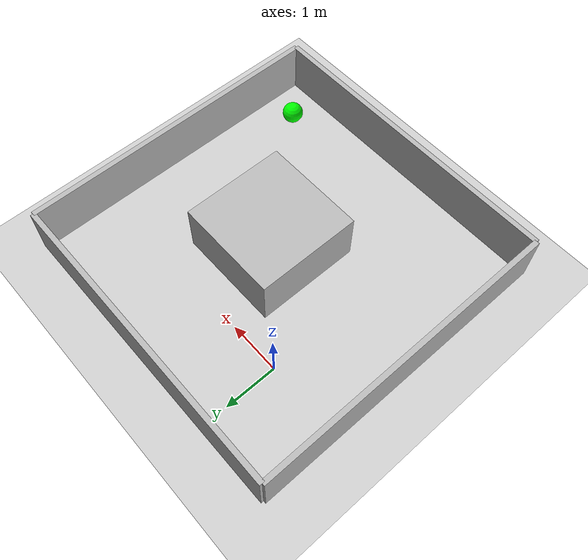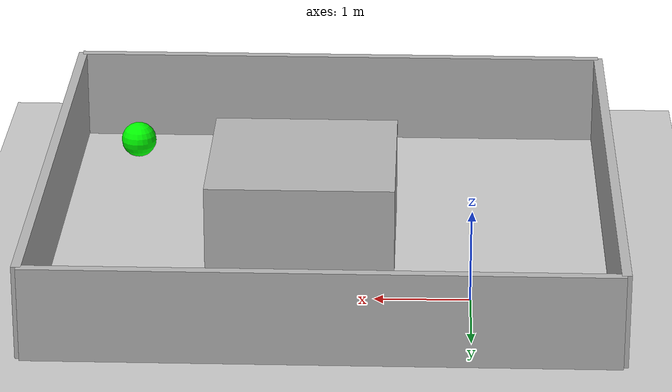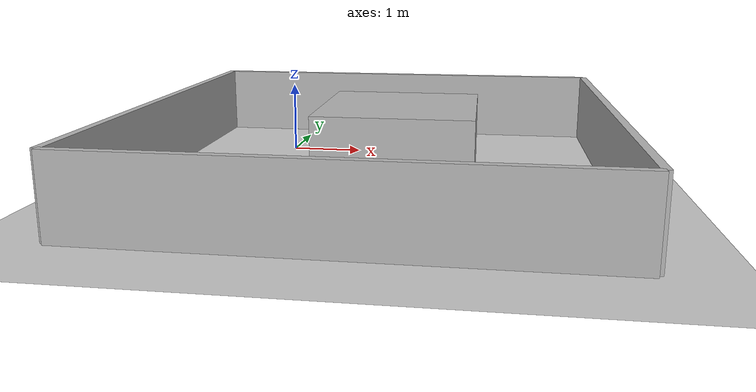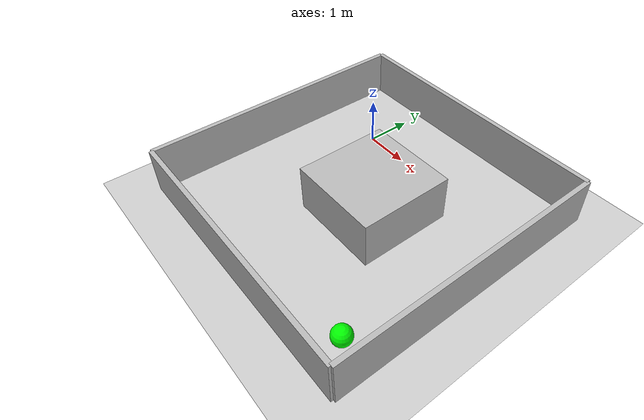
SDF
<?xml version="1.0"?>
<sdf version="1.6">
  <world name="martha_test_world_5">
    <physics name="default_physics" type="ode">
      <max_step_size>0.001</max_step_size>
      <real_time_update_rate>1000</real_time_update_rate>
      <real_time_factor>1.0</real_time_factor>
    </physics>
    <gravity>0 0 -9.81</gravity>
    <include><uri>model://sun</uri></include>
    <include><uri>model://ground_plane</uri></include>
    <plugin name="gazebo_ros_state" filename="libgazebo_ros_state.so">
      <ros><namespace>/gazebo</namespace></ros>
      <update_rate>50.0</update_rate>
    </plugin>

    <!-- Arena center: (1.5, -1.5). Martha starts in its upper-left sector. -->
    <model name="wall_left"><static>true</static><pose>1.5 1.5 0.5 0 0 0</pose><link name="link"><collision name="collision"><geometry><box><size>6 0.1 1</size></box></geometry></collision><visual name="visual"><geometry><box><size>6 0.1 1</size></box></geometry></visual></link></model>
    <model name="wall_right"><static>true</static><pose>1.5 -4.5 0.5 0 0 0</pose><link name="link"><collision name="collision"><geometry><box><size>6 0.1 1</size></box></geometry></collision><visual name="visual"><geometry><box><size>6 0.1 1</size></box></geometry></visual></link></model>
    <model name="wall_front"><static>true</static><pose>4.5 -1.5 0.5 0 0 0</pose><link name="link"><collision name="collision"><geometry><box><size>0.1 6 1</size></box></geometry></collision><visual name="visual"><geometry><box><size>0.1 6 1</size></box></geometry></visual></link></model>
    <model name="wall_back"><static>true</static><pose>-1.5 -1.5 0.5 0 0 0</pose><link name="link"><collision name="collision"><geometry><box><size>0.1 6 1</size></box></geometry></collision><visual name="visual"><geometry><box><size>0.1 6 1</size></box></geometry></visual></link></model>

    <model name="central_obs">
      <static>true</static><pose>1.8 -1.5 0.5 0 0 0</pose>
      <link name="link"><collision name="collision"><geometry><box><size>2 2 1</size></box></geometry></collision><visual name="visual"><geometry><box><size>2 2 1</size></box></geometry></visual></link>
    </model>

    <model name="goal_point">
      <static>true</static><pose>3.8 -3.8 0.2 0 0 0</pose>
      <link name="link"><visual name="visual"><geometry><sphere><radius>0.2</radius></sphere></geometry><material><ambient>0 1 0 1</ambient><diffuse>0 1 0 1</diffuse></material></visual></link>
    </model>
  </world>
</sdf>
